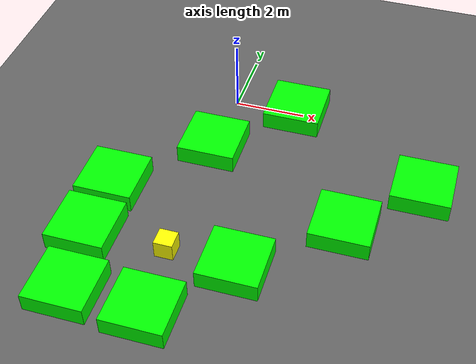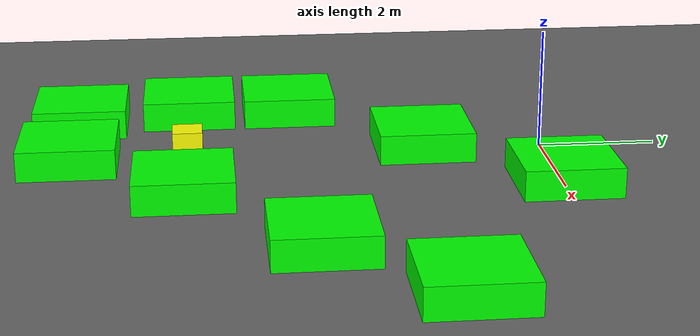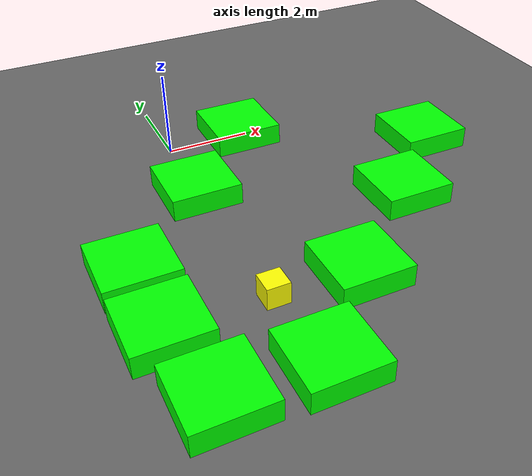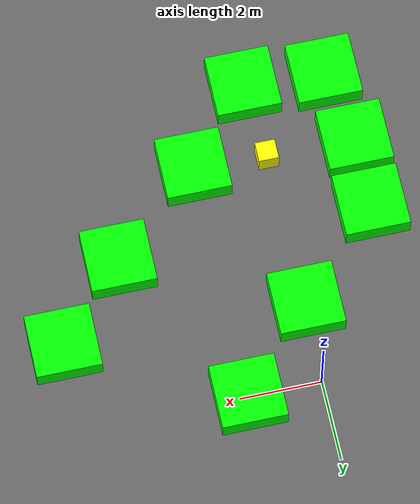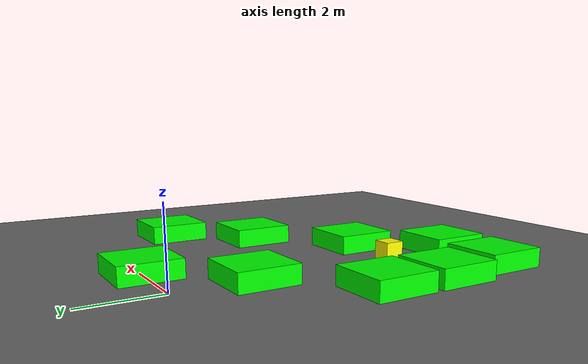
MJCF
<mujoco model="lvl5_deadend_obs10_d10_depth4_seed0">
    <compiler angle="degree" coordinate="local" inertiafromgeom="true"/>
    <option integrator="RK4" timestep="0.01"/>

    <asset>
        <texture builtin="gradient" height="100" rgb1="0.6 0.8 1" rgb2="0 0 0" type="skybox" width="100"/>
        <texture name="floor_texture" type="2d" builtin="checker" width="100" height="100" rgb1="0 0 0" rgb2="0.8 0.8 0.8"/>
        <material name="MatPlane" reflectance="0.5" shininess="1" specular="1" texrepeat="10 10" texture="floor_texture"/>
    </asset>

    <!-- Excluding the contact between the agent and the goal, and the agent and the floor -->
    <contact>
        <exclude body1="agent" body2="goal"/>
        <exclude body1 = "agent" body2 = "floor"/>
    </contact>

    <extension>
        <plugin plugin = "mujoco.pid">
            <instance name = "pid1">
                <config key="kp" value="2"/>
                <config key="ki" value="0"/>
                <config key="kd" value="55"/>
            </instance>
        </plugin>
    </extension>

    <worldbody>
        <light cutoff="100" diffuse="1 1 1" dir="-0 0 -1.3" directional="true" exponent="1" pos="0 0 1.3" specular=".1 .1 .1"/>
        <body name="floor" pos="0 0 0">
            <geom name="floor_geom" type="plane" size="20 20 0.1" material="MatPlane"/>
        </body>

                <body name="goal" pos="12.0000 -12.0000 0">
            <geom name="goal_geom" type="plane" size="0.5 0.5 1" pos="0 0 0" rgba="1 0 0 1"/>
        </body>

                <body name="agent" pos="0.0000 -6.0000 0.250">
            <joint name="j1" type="slide" axis ="1 0 0 "/>
            <joint name="j2" type="slide" axis ="0 1 0 "/>
            <geom name="agent_geom" type="box" size="0.25 0.25 0.250" rgba="1 1 0 1"/>
        </body>

        <body name="obstacle1" pos="1.8021 0.0078 0.250">  <geom name="obstacle1_geom" type="box" size="0.8000 0.8000 0.250" rgba="0 1 0 1"/></body>
        <body name="obstacle2" pos="-0.0735 -2.0279 0.250">  <geom name="obstacle2_geom" type="box" size="0.8000 0.8000 0.250" rgba="0 1 0 1"/></body>
        <body name="obstacle3" pos="5.8390 -2.1927 0.250">  <geom name="obstacle3_geom" type="box" size="0.8000 0.8000 0.250" rgba="0 1 0 1"/></body>
        <body name="obstacle4" pos="-2.1815 -4.1953 0.250">  <geom name="obstacle4_geom" type="box" size="0.8000 0.8000 0.250" rgba="0 1 0 1"/></body>
        <body name="obstacle5" pos="4.1071 -4.0697 0.250">  <geom name="obstacle5_geom" type="box" size="0.8000 0.8000 0.250" rgba="0 1 0 1"/></body>
        <body name="obstacle6" pos="-2.1873 -5.9700 0.250">  <geom name="obstacle6_geom" type="box" size="0.8000 0.8000 0.250" rgba="0 1 0 1"/></body>
        <body name="obstacle7" pos="1.8223 -6.0673 0.250">  <geom name="obstacle7_geom" type="box" size="0.8000 0.8000 0.250" rgba="0 1 0 1"/></body>
        <body name="obstacle8" pos="-1.8531 -7.8687 0.250">  <geom name="obstacle8_geom" type="box" size="0.8000 0.8000 0.250" rgba="0 1 0 1"/></body>
        <body name="obstacle9" pos="0.1579 -7.9607 0.250">  <geom name="obstacle9_geom" type="box" size="0.8000 0.8000 0.250" rgba="0 1 0 1"/></body>

    </worldbody>

    <sensor>
<!-- SENSORS -->

        <distance name="dist1" geom1="agent_geom" geom2="obstacle1_geom" cutoff="1.5"/>
        <distance name="dist2" geom1="agent_geom" geom2="obstacle2_geom" cutoff="1.5"/>
        <distance name="dist3" geom1="agent_geom" geom2="obstacle3_geom" cutoff="1.5"/>
        <distance name="dist4" geom1="agent_geom" geom2="obstacle4_geom" cutoff="1.5"/>
        <distance name="dist5" geom1="agent_geom" geom2="obstacle5_geom" cutoff="1.5"/>
        <distance name="dist6" geom1="agent_geom" geom2="obstacle6_geom" cutoff="1.5"/>
        <distance name="dist7" geom1="agent_geom" geom2="obstacle7_geom" cutoff="1.5"/>
        <distance name="dist8" geom1="agent_geom" geom2="obstacle8_geom" cutoff="1.5"/>
        <distance name="dist9" geom1="agent_geom" geom2="obstacle9_geom" cutoff="1.5"/>
</sensor>

    <actuator>
        <plugin joint="j1" plugin="mujoco.pid" instance="pid1" />
        <plugin joint="j2" plugin="mujoco.pid" instance="pid1"/>
    </actuator>
</mujoco>
